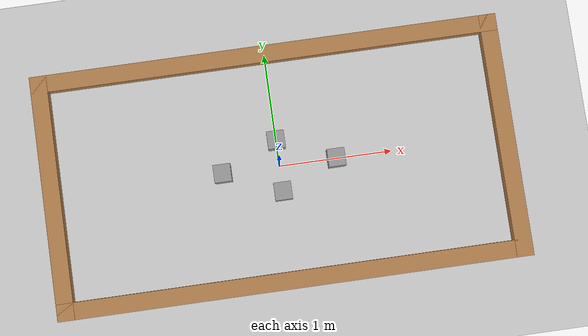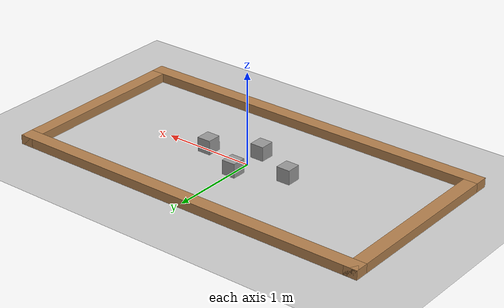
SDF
<sdf version="1.6">
 <world name="default">
  <light name="sun" type="directional">
   <pose>0 0 10 0 -0 0</pose>
   <diffuse>0.8 0.8 0.8 1</diffuse>
   <specular>0.2 0.2 0.2 1</specular>
   <attenuation>
    <range>1000</range>
    <constant>0.9</constant>
    <linear>0.01</linear>
    <quadratic>0.001</quadratic>
   </attenuation>
   <direction>-0.5 0.1 -0.9</direction>
  </light>
  <model name="ground_plane">
   <static>1</static>
   <link name="link">
    <collision name="collision">
     <geometry><plane><normal>0 0 1</normal><size>100 100</size></plane></geometry>
     <surface>
      <contact><collide_bitmask>65535</collide_bitmask></contact>
      <friction><ode><mu>100</mu><mu2>50</mu2></ode></friction>
     </surface>
    </collision>
    <visual name="visual">
     <cast_shadows>0</cast_shadows>
     <geometry><plane><normal>0 0 1</normal><size>100 100</size></plane></geometry>
     <material>
      <script><uri>file://media/materials/scripts/gazebo.material</uri><name>Gazebo/Grey</name></script>
     </material>
    </visual>
   </link>
  </model>
  <gravity>0 0 -9.8</gravity>
  <magnetic_field>6e-06 2.3e-05 -4.2e-05</magnetic_field>
  <atmosphere type="adiabatic"/>
  <physics name="default_physics" default="0" type="ode">
   <max_step_size>0.001</max_step_size>
   <real_time_factor>1</real_time_factor>
   <real_time_update_rate>1000</real_time_update_rate>
  </physics>
  <scene><ambient>0.4 0.4 0.4 1</ambient><background>0.7 0.7 0.7 1</background><shadows>1</shadows></scene>
  <spherical_coordinates>
   <surface_model>EARTH_WGS84</surface_model>
   <latitude_deg>0</latitude_deg>
   <longitude_deg>0</longitude_deg>
   <elevation>0</elevation>
   <heading_deg>0</heading_deg>
  </spherical_coordinates>
  <model name="competition_map_v3">
   <link name="Wall_0">
    <collision name="Wall_0_Collision">
     <geometry><box><size>4.15012 0.15 0.1</size></box></geometry>
     <pose>0 0 0.05 0 -0 0</pose>
    </collision>
    <visual name="Wall_0_Visual">
     <pose>0 0 0.05 0 -0 0</pose>
     <geometry><box><size>4.15012 0.15 0.1</size></box></geometry>
     <material>
      <script><uri>file://media/materials/scripts/gazebo.material</uri><name>Gazebo/Wood</name></script>
      <ambient>1 1 1 1</ambient>
     </material>
     <meta><layer>0</layer></meta>
    </visual>
    <pose>0 1 0 0 -0 0</pose>
   </link>
   <link name="Wall_1">
    <collision name="Wall_1_Collision">
     <geometry><box><size>2.15 0.15 0.1</size></box></geometry>
     <pose>0 0 0.05 0 -0 0</pose>
    </collision>
    <visual name="Wall_1_Visual">
     <pose>0 0 0.05 0 -0 0</pose>
     <geometry><box><size>2.15 0.15 0.1</size></box></geometry>
     <material>
      <script><uri>file://media/materials/scripts/gazebo.material</uri><name>Gazebo/Wood</name></script>
      <ambient>1 1 1 1</ambient>
     </material>
     <meta><layer>0</layer></meta>
    </visual>
    <pose>2 0 0 0 -0 -1.5708</pose>
   </link>
   <link name="Wall_2">
    <collision name="Wall_2_Collision">
     <geometry><box><size>4.15012 0.15 0.1</size></box></geometry>
     <pose>0 0 0.05 0 -0 0</pose>
    </collision>
    <visual name="Wall_2_Visual">
     <pose>0 0 0.05 0 -0 0</pose>
     <geometry><box><size>4.15012 0.15 0.1</size></box></geometry>
     <material>
      <script><uri>file://media/materials/scripts/gazebo.material</uri><name>Gazebo/Wood</name></script>
      <ambient>1 1 1 1</ambient>
     </material>
     <meta><layer>0</layer></meta>
    </visual>
    <pose>0 -1 0 0 -0 3.14159</pose>
   </link>
   <link name="Wall_3">
    <collision name="Wall_3_Collision">
     <geometry><box><size>2.15 0.15 0.1</size></box></geometry>
     <pose>0 0 0.05 0 -0 0</pose>
    </collision>
    <visual name="Wall_3_Visual">
     <pose>0 0 0.05 0 -0 0</pose>
     <geometry><box><size>2.15 0.15 0.1</size></box></geometry>
     <material>
      <script><uri>file://media/materials/scripts/gazebo.material</uri><name>Gazebo/Wood</name></script>
      <ambient>1 1 1 1</ambient>
     </material>
     <meta><layer>0</layer></meta>
    </visual>
    <pose>-2 0 0 0 -0 1.5708</pose>
   </link>
   <static>1</static>
  </model>
  <model name="unit_box">
   <pose>0 0.225 0.077585 0 -0 0</pose>
   <link name="link">
    <inertial>
     <mass>1</mass>
     <inertia>
      <ixx>0.166667</ixx>
      <ixy>0</ixy>
      <ixz>0</ixz>
      <iyy>0.166667</iyy>
      <iyz>0</iyz>
      <izz>0.166667</izz>
     </inertia>
    </inertial>
    <collision name="collision"><geometry><box><size>0.151935 0.15638 0.155171</size></box></geometry></collision>
    <visual name="visual">
     <geometry><box><size>0.151935 0.15638 0.155171</size></box></geometry>
     <material>
      <script><name>Gazebo/Grey</name><uri>file://media/materials/scripts/gazebo.material</uri></script>
     </material>
    </visual>
   </link>
  </model>
  <model name="unit_box_clone">
   <pose>0 -0.225 0.077585 0 -0 0</pose>
   <link name="link">
    <inertial>
     <mass>1</mass>
     <inertia>
      <ixx>0.166667</ixx>
      <ixy>0</ixy>
      <ixz>0</ixz>
      <iyy>0.166667</iyy>
      <iyz>0</iyz>
      <izz>0.166667</izz>
     </inertia>
    </inertial>
    <collision name="collision"><geometry><box><size>0.151935 0.15638 0.155171</size></box></geometry></collision>
    <visual name="visual">
     <geometry><box><size>0.151935 0.15638 0.155171</size></box></geometry>
     <material>
      <script><name>Gazebo/Grey</name><uri>file://media/materials/scripts/gazebo.material</uri></script>
     </material>
    </visual>
   </link>
  </model>
  <model name="unit_box_clone_clone">
   <pose>-0.5 0 0.077585 0 -0 0</pose>
   <link name="link">
    <inertial>
     <mass>1</mass>
     <inertia>
      <ixx>0.166667</ixx>
      <ixy>0</ixy>
      <ixz>0</ixz>
      <iyy>0.166667</iyy>
      <iyz>0</iyz>
      <izz>0.166667</izz>
     </inertia>
    </inertial>
    <collision name="collision"><geometry><box><size>0.151935 0.15638 0.155171</size></box></geometry></collision>
    <visual name="visual">
     <geometry><box><size>0.151935 0.15638 0.155171</size></box></geometry>
     <material>
      <script><name>Gazebo/Grey</name><uri>file://media/materials/scripts/gazebo.material</uri></script>
     </material>
    </visual>
   </link>
  </model>
  <model name="unit_box_clone_clone_clone">
   <pose>0.5 0 0.077585 0 -0 0</pose>
   <link name="link">
    <inertial>
     <mass>1</mass>
     <inertia>
      <ixx>0.166667</ixx>
      <ixy>0</ixy>
      <ixz>0</ixz>
      <iyy>0.166667</iyy>
      <iyz>0</iyz>
      <izz>0.166667</izz>
     </inertia>
    </inertial>
    <collision name="collision"><geometry><box><size>0.151935 0.15638 0.155171</size></box></geometry></collision>
    <visual name="visual">
     <geometry><box><size>0.151935 0.15638 0.155171</size></box></geometry>
     <material>
      <script><name>Gazebo/Grey</name><uri>file://media/materials/scripts/gazebo.material</uri></script>
     </material>
    </visual>
   </link>
  </model>
 </world>
</sdf>
